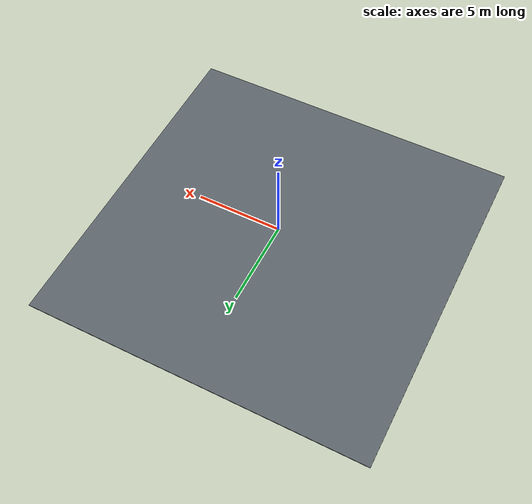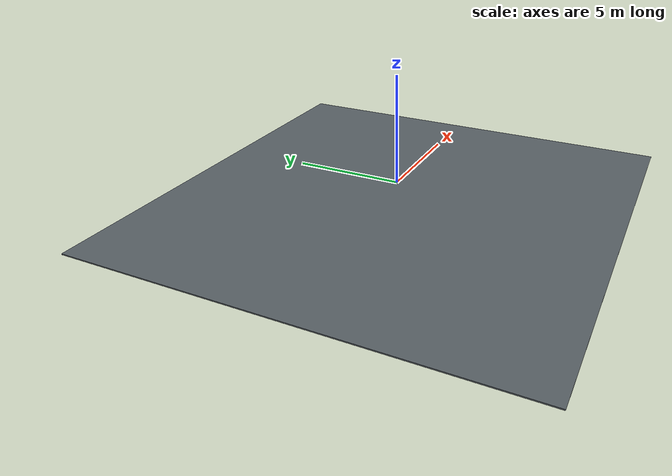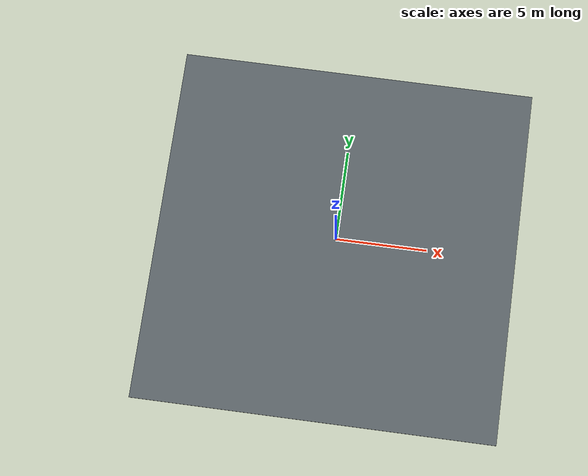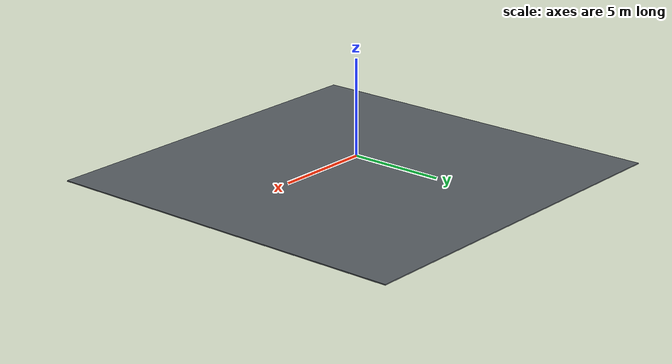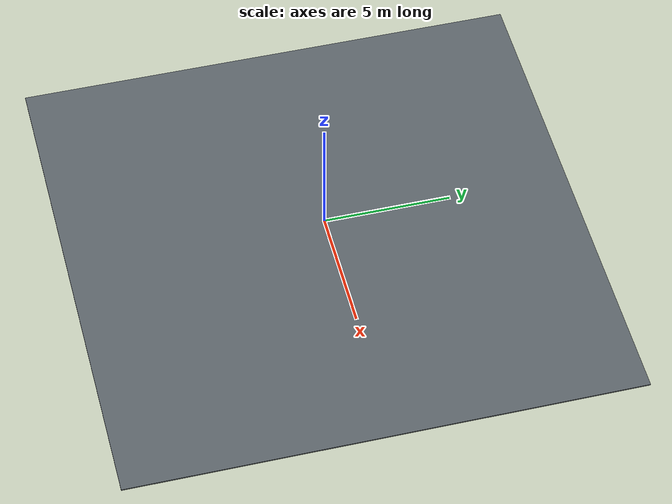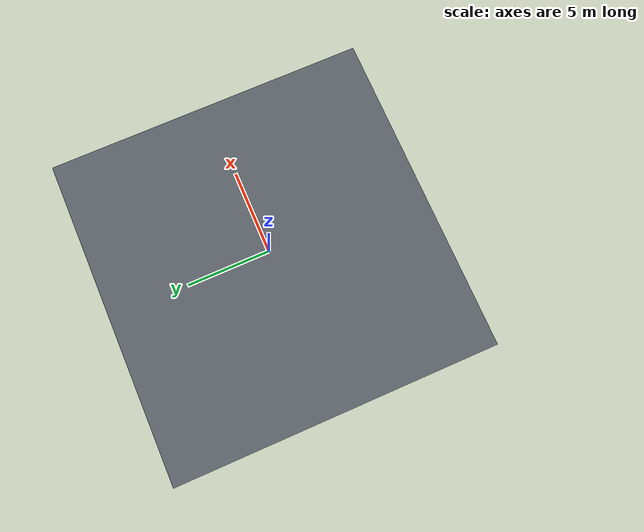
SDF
<?xml version="1.0"?>
<sdf version="1.7"><world name="lab">
  <physics type="ode"><max_step_size>0.001</max_step_size><real_time_update_rate>1000</real_time_update_rate></physics>
  <scene><ambient>0.55 0.55 0.55 1</ambient><background>0.72 0.77 0.82 1</background><shadows>true</shadows></scene>
  <light name="lab_sun" type="directional"><pose>0 0 5 0 0 0</pose><diffuse>0.75 0.75 0.75 1</diffuse><specular>0.1 0.1 0.1 1</specular><direction>-0.3 0.2 -1</direction><cast_shadows>true</cast_shadows></light>
  <model name="lab_floor"><static>true</static><link name="floor">
    <collision name="floor_collision"><pose>0 0 -0.845 0 0 0</pose><geometry><box><size>20 20 0.05</size></box></geometry></collision>
    <visual name="floor_visual"><pose>0 0 -0.845 0 0 0</pose><geometry><box><size>20 20 0.05</size></box></geometry><material><ambient>0.35 0.38 0.40 1</ambient><diffuse>0.35 0.38 0.40 1</diffuse></material></visual>
  </link></model>
  <gui><camera name="user_camera"><pose>1.85 -2.05 1.5 0 0.458 2.203</pose><view_controller>orbit</view_controller></camera></gui>
  <model name="lab_overview"><static>true</static><pose>1.85 -2.05 1.5 0 0.458 2.203</pose><link name="camera">
    <sensor name="overview" type="camera"><always_on>true</always_on><update_rate>2</update_rate>
      <camera><horizontal_fov>1.0</horizontal_fov><image><width>1280</width><height>800</height><format>R8G8B8</format></image><clip><near>0.05</near><far>20</far></clip></camera>
      <plugin name="overview_ros" filename="libgazebo_ros_camera.so"><ros><namespace>/lab/overview</namespace></ros><camera_name>overview</camera_name><frame_name>lab_overview_optical_frame</frame_name></plugin>
    </sensor>
  </link></model>
</world></sdf>
